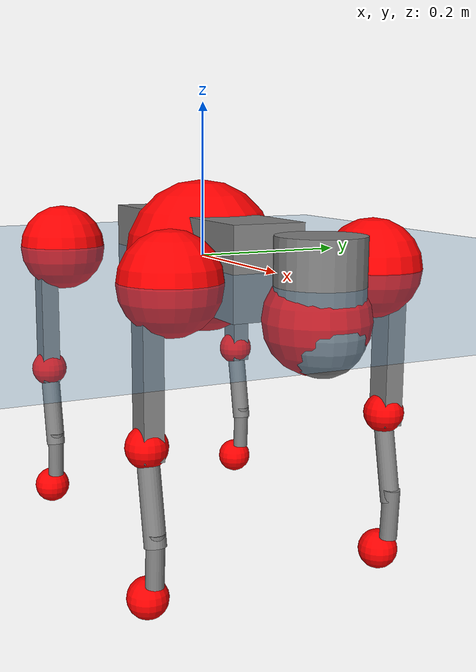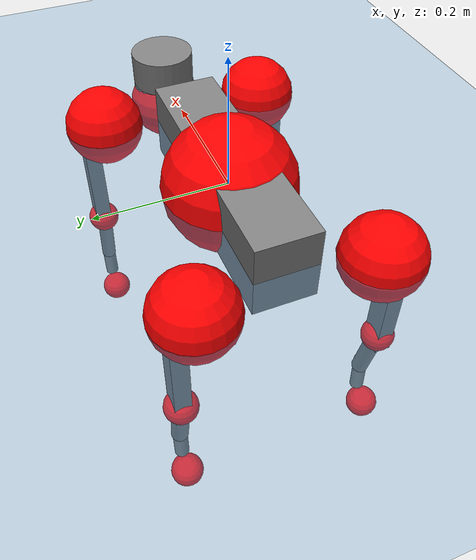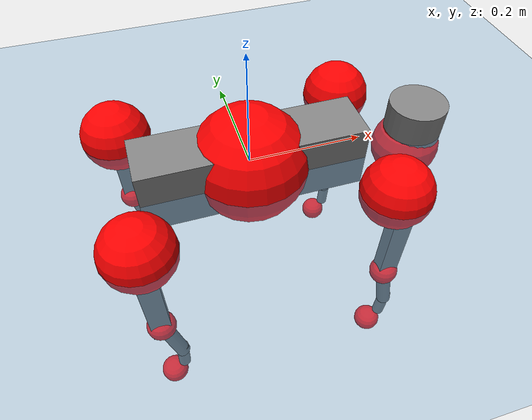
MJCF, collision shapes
<mujoco model="go2">
  <compiler angle="radian" assetdir="assets" balanceinertia="true" inertiafromgeom="false"/>

  <option timestep="0.005" density="1.2" viscosity="2e-05"/>

  <size nkey="1"/>

  <visual>
    <quality shadowsize="8192"/>
    <map shadowclip="0.5"/>
  </visual>

  <default>
    <default class="/">
      <geom contype="0" conaffinity="0" group="1" solref="-1000 -80"/>
      <site size="0.01 0.005 0.005" group="5"/>
      <general forcelimited="true" biastype="affine" gainprm="20" biasprm="0 -20 -0.5"/>
      <default class="go2">
        <joint armature="0.01" damping="0.01" frictionloss="0.2"/>
        <geom condim="1" margin="0.001"/>
        <default class="visual">
          <geom type="mesh" group="2"/>
        </default>
        <default class="collision">
          <geom group="3"/>
          <default class="foot">
            <geom size="0.022 0 0" condim="6" priority="1" friction="0.8 0.02 0.01" solimp="0.015 1 0.022"/>
          </default>
        </default>
        <default class="reward_collision_sphere">
          <geom group="5" rgba="1 0 0 1"/>
        </default>
      </default>
    </default>
  </default>

  <asset>
    <texture type="skybox" colorspace="auto" name="//unnamed_texture_0" builtin="gradient" rgb1="0.95 0.95 0.95" rgb2="0.95 0.95 0.95" width="100" height="600"/>
    <texture type="2d" colorspace="auto" name="texplane" builtin="checker" rgb1="0.345 0.575 0.748" rgb2="0.345 0.575 0.748" markrgb="1 1 1" width="512" height="512"/>
    <material name="MatPlane" class="/" texture="texplane" texuniform="true" texrepeat="2 2" specular="0.9"/>
    <material name="metal" class="/" rgba="0.9 0.95 0.95 1"/>
    <material name="black" class="/" rgba="0 0 0 1"/>
    <material name="white" class="/"/>
    <material name="gray" class="/" rgba="0.671705 0.692426 0.77427 1"/>
    <mesh name="base_0" class="/" file="base_0.obj"/>
    <mesh name="base_1" class="/" file="base_1.obj"/>
    <mesh name="base_2" class="/" file="base_2.obj"/>
    <mesh name="base_3" class="/" file="base_3.obj"/>
    <mesh name="base_4" class="/" file="base_4.obj"/>
    <mesh name="hip_0" class="/" file="hip_0.obj"/>
    <mesh name="hip_1" class="/" file="hip_1.obj"/>
    <mesh name="thigh_0" class="/" file="thigh_0.obj"/>
    <mesh name="thigh_1" class="/" file="thigh_1.obj"/>
    <mesh name="thigh_mirror_0" class="/" file="thigh_mirror_0.obj"/>
    <mesh name="thigh_mirror_1" class="/" file="thigh_mirror_1.obj"/>
    <mesh name="calf_0" class="/" file="calf_0.obj"/>
    <mesh name="calf_1" class="/" file="calf_1.obj"/>
    <mesh name="calf_mirror_0" class="/" file="calf_mirror_0.obj"/>
    <mesh name="calf_mirror_1" class="/" file="calf_mirror_1.obj"/>
    <mesh name="foot" class="/" file="foot.obj"/>
  </asset>

  <worldbody>
    <geom name="floor" class="/" size="100 100 0.125" type="plane" group="0" material="MatPlane"/>
    <light name="toplight_shadow" class="/" pos="0 0 5" dir="0.0990148 0.0990148 -0.990148" type="directional" ambient="0.04 0.04 0.04" diffuse="0.55 0.55 0.55" specular="0.12 0.12 0.12"/>
    <light name="toplight_fill" class="/" pos="0 0 5" dir="0.0990148 0.0990148 -0.990148" type="directional" castshadow="false" ambient="0.04 0.04 0.04" diffuse="0.3 0.3 0.3" specular="0.08 0.08 0.08"/>
    <body name="trunk" childclass="go2" pos="-0.000483718 -0.00256607 -0.00103378" quat="1 -4.87094e-05 -1.50296e-05 5.15355e-05">
      <inertial pos="0.0238256 -0.0025025 -0.00463927" quat="-0.000286205 0.713718 -0.00307858 0.700426" mass="7.08637" diaginertia="0.141105 0.165218 0.011237"/>
      <joint name="//unnamed_joint_0" type="free" armature="0" damping="0" frictionloss="0"/>
      <geom name="//unnamed_geom_1" class="visual" material="black" mesh="base_0"/>
      <geom name="//unnamed_geom_2" class="visual" material="black" mesh="base_1"/>
      <geom name="//unnamed_geom_3" class="visual" material="black" mesh="base_2"/>
      <geom name="//unnamed_geom_4" class="visual" material="white" mesh="base_3"/>
      <geom name="//unnamed_geom_5" class="visual" material="gray" mesh="base_4"/>
      <geom name="trunk_1" class="collision" size="0.190354 0.0473103 0.0576832" type="box"/>
      <geom name="trunk_2" class="collision" size="0.0505993 0.0455393" pos="0.30327 0 0.00856556" type="cylinder"/>
      <geom name="trunk_3" class="collision" size="0.0475633" pos="0.311783 0 -0.0513934"/>
      <geom name="//unnamed_geom_9" class="reward_collision_sphere" size="0.101199"/>
      <geom name="//unnamed_geom_10" class="reward_collision_sphere" size="0.0607191" pos="0.29795 0 -0.038545"/>
      <site name="imu" pos="-0.0139598 0.013922 0.0233974" size="0.0101199"/>
      <camera name="track" pos="0 -2.23059 0" quat="0.707107 0.707107 0 0" mode="trackcom"/>
      <camera name="ego_camera" pos="0.332001 0 0.038545" quat="-0.5 -0.5 0.5 0.5"/>
      <body name="FL_hip" pos="0.208193 0.0522724 0.0013271" quat="0.999999 -6.49418e-05 0.00103981 2.63464e-05">
        <inertial pos="-0.00516732 0.00215909 0.00241397" quat="0.499902 0.498858 0.501744 0.499492" mass="0.681994" diaginertia="0.00120541 0.000992213 0.000219858"/>
        <joint name="FL_hip_joint" pos="0 0 0" axis="0.999957 -0.00898672 0.00228292" stiffness="0.00758622" range="-1.04246 1.10202" armature="0.0104223" damping="0" frictionloss="0.231027"/>
        <geom name="//unnamed_geom_11" class="visual" material="metal" mesh="hip_0"/>
        <geom name="//unnamed_geom_12" class="visual" material="gray" mesh="hip_1"/>
        <geom name="//unnamed_geom_13" class="collision" size="0.0465513 0.0202397" pos="0 0.0892235 0" quat="0.707107 0.707107 0 0" type="cylinder"/>
        <geom name="//unnamed_geom_14" class="reward_collision_sphere" size="0.0607191" pos="0 0.0780705 0"/>
        <body name="FL_thigh" pos="-0.00123221 0.106986 -4.60713e-05" quat="0.999999 -0.000519912 -0.00115238 -0.000890955">
          <inertial pos="-0.00120027 -0.0219915 -0.028346" quat="0.835123 0.0853452 -0.0211661 0.54299" mass="1.19271" diaginertia="0.00793402 0.00994174 0.000394684"/>
          <joint name="FL_thigh_joint" pos="0 0 0" axis="-0.0139711 0.999878 -0.0070149" stiffness="0.00346368" range="-1.51709 3.5193" armature="0.0113133" damping="0.00345621" frictionloss="0.221478"/>
          <geom name="//unnamed_geom_15" class="visual" material="metal" mesh="thigh_0"/>
          <geom name="//unnamed_geom_16" class="visual" material="gray" mesh="thigh_1"/>
          <geom name="//unnamed_geom_17" class="collision" size="0.107776 0.0123968 0.0172037" pos="0 0 -0.0912233" quat="0.707107 0 0.707107 0" type="box"/>
          <body name="FL_calf" pos="-0.00156889 -0.0016551 -0.184458" quat="0.999999 9.31739e-05 0.00082323 -0.001126">
            <inertial pos="0.00954686 -0.000625543 -0.121558" quat="0.71133 2.60953e-05 -0.00592783 0.702833" mass="0.254378" diaginertia="0.00197896 0.00258263 2.43166e-05"/>
            <joint name="FL_calf_joint" pos="0 0 0" axis="0.00186965 0.999952 -0.00962556" stiffness="0.000869642" range="-2.74062 -0.828412" armature="0.0086748" damping="0.00518672" frictionloss="0.204676"/>
            <geom name="//unnamed_geom_18" class="visual" material="gray" mesh="calf_0"/>
            <geom name="//unnamed_geom_19" class="visual" material="black" mesh="calf_1"/>
            <geom name="FL_calf0" class="collision" size="0.0121438 0.0607191" pos="0.00851285 0 -0.0513934" quat="0.994493 0 -0.104807 0" type="cylinder"/>
            <geom name="//unnamed_geom_21" class="collision" size="0.0111318 0.0328895" pos="0.0212821 0 -0.12677" quat="0.999688 0 0.0249974 0" type="cylinder"/>
            <geom name="//unnamed_geom_22" class="visual" pos="0 0 -0.182447" quat="1 0 0 0" material="black" mesh="foot"/>
            <geom name="FL_foot" class="foot" size="0.0161522" pos="-0.00212821 0 -0.182447"/>
            <geom name="//unnamed_geom_24" class="reward_collision_sphere" size="0.0252996"/>
            <geom name="//unnamed_geom_25" class="reward_collision_sphere" size="0.0252996" pos="-0.00212821 0 -0.182447"/>
            <site name="FL_foot" class="foot" pos="-0.00212821 0 -0.182447" size="0.0101199"/>
          </body>
        </body>
      </body>
      <body name="FR_hip" pos="0.206497 -0.0547667 -0.00239387" quat="1 -0.000317016 -0.000209441 -0.000157229">
        <inertial pos="-0.00696336 -0.00244561 0.000737415" quat="0.496264 0.509378 0.498623 0.495612" mass="0.676091" diaginertia="0.00117092 0.00101118 0.000225164"/>
        <joint name="FR_hip_joint" pos="0 0 0" axis="0.999899 0.0080038 -0.011741" range="-1.049 1.0699" armature="0.0107014" damping="0.0117667" frictionloss="0.220191"/>
        <geom name="//unnamed_geom_26" class="visual" pos="0 2.25401e-09 9.66791e-08" quat="4.63268e-05 1 0 0" material="metal" mesh="hip_0"/>
        <geom name="//unnamed_geom_27" class="visual" pos="0 3.65402e-09 -2.39124e-07" quat="4.63268e-05 1 0 0" material="gray" mesh="hip_1"/>
        <geom name="//unnamed_geom_28" class="collision" size="0.0465513 0.0202397" pos="0 -0.0892235 0" quat="0.707107 0.707107 0 0" type="cylinder"/>
        <geom name="//unnamed_geom_29" class="reward_collision_sphere" size="0.0607191" pos="0 -0.0780705 0"/>
        <body name="FR_thigh" pos="0.00128558 -0.106166 0.000913515" quat="0.999999 0.000361085 -0.000550949 0.0011923">
          <inertial pos="-0.00549275 0.0241557 -0.0270802" quat="0.559043 -0.0244631 0.0941349 0.823414" mass="1.27065" diaginertia="0.00824302 0.0103786 0.000406405"/>
          <joint name="FR_thigh_joint" pos="0 0 0" axis="0.00298004 -0.999988 -0.0039891" range="-3.5154 1.56869" armature="0.00963206" damping="0.0182799" frictionloss="0.20106"/>
          <geom name="//unnamed_geom_30" class="visual" material="metal" mesh="thigh_mirror_0"/>
          <geom name="//unnamed_geom_31" class="visual" material="gray" mesh="thigh_mirror_1"/>
          <geom name="//unnamed_geom_32" class="collision" size="0.107776 0.0123968 0.0172037" pos="0 0 -0.0912233" quat="0.707107 0 0.707107 0" type="box"/>
          <body name="FR_calf" pos="-0.00178426 -0.00177484 -0.184617" quat="0.999999 0.000208731 -0.000456862 0.000903536">
            <inertial pos="0.00893727 0.000775143 -0.118646" quat="0.701702 0.0035496 -0.00984733 0.712393" mass="0.247455" diaginertia="0.00204642 0.00253604 2.49937e-05"/>
            <joint name="FR_calf_joint" pos="0 0 0" axis="0.00291027 -0.999991 -0.00323044" range="0.827061 2.70653" armature="0.0108094" damping="0.0161918" frictionloss="0.180659"/>
            <geom name="//unnamed_geom_33" class="visual" material="gray" mesh="calf_mirror_0"/>
            <geom name="//unnamed_geom_34" class="visual" material="black" mesh="calf_mirror_1"/>
            <geom name="FR_calf0" class="collision" size="0.0131558 0.0607191" pos="0.0106411 0 -0.0513934" quat="0.995004 0 -0.0998334 0" type="cylinder"/>
            <geom name="//unnamed_geom_36" class="collision" size="0.0111318 0.0328895" pos="0.0212821 0 -0.12677" quat="0.999688 0 0.0249974 0" type="cylinder"/>
            <geom name="//unnamed_geom_37" class="visual" pos="0 0 -0.182447" quat="1 0 0 0" material="black" mesh="foot"/>
            <geom name="FR_foot" class="foot" size="0.0201006" pos="-0.00212821 0 -0.182447"/>
            <geom name="//unnamed_geom_39" class="reward_collision_sphere" size="0.0252996"/>
            <geom name="//unnamed_geom_40" class="reward_collision_sphere" size="0.0252996" pos="-0.00212821 0 -0.182447"/>
            <site name="FR_foot" class="foot" pos="-0.00212821 0 -0.182447" size="0.0101199"/>
          </body>
        </body>
      </body>
      <body name="RL_hip" pos="-0.206562 0.0526447 0.00196543" quat="1 0.000693866 -0.000561602 0.000191126">
        <inertial pos="0.00619633 -2.48016e-05 0.0027293" quat="0.50145 0.50131 0.499337 0.497894" mass="0.732928" diaginertia="0.00124272 0.0010582 0.000226008"/>
        <joint name="RL_hip_joint" pos="0 0 0" axis="-0.999601 0.0133473 0.0248756" range="-1.03867 0.99767" armature="0.0102167" damping="0.00730846" frictionloss="0.202329"/>
        <geom name="//unnamed_geom_41" class="visual" pos="-1.80809e-09 0 -3.54427e-07" quat="4.63268e-05 0 1 0" material="metal" mesh="hip_0"/>
        <geom name="//unnamed_geom_42" class="visual" pos="-2.93112e-09 0 -3.14326e-07" quat="4.63268e-05 0 1 0" material="gray" mesh="hip_1"/>
        <geom name="//unnamed_geom_43" class="collision" size="0.0465513 0.0202397" pos="0 0.0892235 0" quat="0.707107 0.707107 0 0" type="cylinder"/>
        <geom name="//unnamed_geom_44" class="reward_collision_sphere" size="0.0607191" pos="0 0.0780705 0"/>
        <body name="RL_thigh" pos="-0.00246956 0.106406 -0.000577402" quat="1 2.1205e-05 3.81854e-05 7.85785e-05">
          <inertial pos="-0.0035779 -0.0235065 -0.0295047" quat="0.823474 0.0946493 -0.02302 0.558929" mass="1.22927" diaginertia="0.00822395 0.0106075 0.000420181"/>
          <joint name="RL_thigh_joint" pos="0 0 0" axis="-0.00763999 0.999957 -0.00531869" stiffness="0.00531243" range="-0.57439 4.59446" armature="0.00920598" damping="0" frictionloss="0.212898"/>
          <geom name="//unnamed_geom_45" class="visual" material="metal" mesh="thigh_0"/>
          <geom name="//unnamed_geom_46" class="visual" material="gray" mesh="thigh_1"/>
          <geom name="//unnamed_geom_47" class="collision" size="0.107776 0.0123968 0.0172037" pos="0 0 -0.0912233" quat="0.707107 0 0.707107 0" type="box"/>
          <body name="RL_calf" pos="-0.00190634 -0.000855754 -0.181571" quat="1 -5.31868e-05 -0.000178202 4.0823e-05">
            <inertial pos="0.00766346 9.12733e-06 -0.12035" quat="0.70854 0.00120883 -0.00146009 0.705668" mass="0.26814" diaginertia="0.00215854 0.00264352 2.5287e-05"/>
            <joint name="RL_calf_joint" pos="0 0 0" axis="0.0134679 0.999909 0.00037741" stiffness="0.00286096" range="-2.70528 -0.889132" armature="0.00992466" damping="0" frictionloss="0.200722"/>
            <geom name="//unnamed_geom_48" class="visual" material="gray" mesh="calf_0"/>
            <geom name="//unnamed_geom_49" class="visual" material="black" mesh="calf_1"/>
            <geom name="RL_calf0" class="collision" size="0.0131558 0.0607191" pos="0.0106411 0 -0.0513934" quat="0.995004 0 -0.0998334 0" type="cylinder"/>
            <geom name="//unnamed_geom_51" class="collision" size="0.0111318 0.0328895" pos="0.0212821 0 -0.12677" quat="0.999688 0 0.0249974 0" type="cylinder"/>
            <geom name="//unnamed_geom_52" class="visual" pos="0 0 -0.182447" quat="1 0 0 0" material="black" mesh="foot"/>
            <geom name="RL_foot" class="foot" size="0.0214135" pos="-0.00212821 0 -0.182447"/>
            <geom name="//unnamed_geom_54" class="reward_collision_sphere" size="0.0252996"/>
            <geom name="//unnamed_geom_55" class="reward_collision_sphere" size="0.0252996" pos="-0.00212821 0 -0.182447"/>
            <site name="RL_foot" class="foot" pos="-0.00212821 0 -0.182447" size="0.0101199"/>
          </body>
        </body>
      </body>
      <body name="RR_hip" pos="-0.205556 -0.0509237 -0.00295226" quat="1 -0.000327795 7.31245e-05 0.000905067">
        <inertial pos="0.00623935 0.000175451 -0.00310915" quat="0.500682 0.498639 0.497167 0.50349" mass="0.720484" diaginertia="0.00128941 0.00108988 0.000233509"/>
        <joint name="RR_hip_joint" pos="0 0 0" axis="-0.999979 -0.000240708 0.00648195" stiffness="0.0107038" range="-1.02816 1.0141" armature="0.0101367" damping="0.00382917" frictionloss="0.192384"/>
        <geom name="//unnamed_geom_56" class="visual" pos="1.80986e-09 2.25401e-09 -4.51106e-07" quat="2.14617e-09 4.63268e-05 4.63268e-05 -1" material="metal" mesh="hip_0"/>
        <geom name="//unnamed_geom_57" class="visual" pos="2.92674e-09 3.65402e-09 -7.52014e-08" quat="2.14617e-09 4.63268e-05 4.63268e-05 -1" material="gray" mesh="hip_1"/>
        <geom name="//unnamed_geom_58" class="collision" size="0.0465513 0.0202397" pos="0 -0.0892235 0" quat="0.707107 0.707107 0 0" type="cylinder"/>
        <geom name="//unnamed_geom_59" class="reward_collision_sphere" size="0.0607191" pos="0 -0.0780705 0"/>
        <body name="RR_thigh" pos="4.29334e-05 -0.104059 0.00163796" quat="0.999999 -0.000758488 -0.000302554 -0.00075037">
          <inertial pos="-0.00352992 0.023186 -0.02526" quat="0.552359 -0.020341 0.0856895 0.828941" mass="1.14041" diaginertia="0.0077295 0.00966881 0.000390523"/>
          <joint name="RR_thigh_joint" pos="0 0 0" axis="0.000639222 -1 0.000337588" range="-4.54846 0.581031" armature="0.0105685" damping="0.00690254" frictionloss="0.20012"/>
          <geom name="//unnamed_geom_60" class="visual" material="metal" mesh="thigh_mirror_0"/>
          <geom name="//unnamed_geom_61" class="visual" material="gray" mesh="thigh_mirror_1"/>
          <geom name="//unnamed_geom_62" class="collision" size="0.107776 0.0123968 0.0172037" pos="0 0 -0.0912233" quat="0.707107 0 0.707107 0" type="box"/>
          <body name="RR_calf" pos="0.000655504 0.000667368 -0.180949" quat="0.999999 0.000913747 0.000436591 0.000701785">
            <inertial pos="0.00677339 0.000800555 -0.121836" quat="0.703799 -0.00807407 0.0107739 0.710272" mass="0.254053" diaginertia="0.00208258 0.00249687 2.46147e-05"/>
            <joint name="RR_calf_joint" pos="0 0 0" axis="-1.75041e-05 -1 -0.000429548" range="0.787173 2.75523" armature="0.00919484" damping="0.0124793" frictionloss="0.206519"/>
            <geom name="//unnamed_geom_63" class="visual" material="gray" mesh="calf_mirror_0"/>
            <geom name="//unnamed_geom_64" class="visual" material="black" mesh="calf_mirror_1"/>
            <geom name="RR_calf0" class="collision" size="0.0131558 0.0607191" pos="0.0106411 0 -0.0513934" quat="0.995004 0 -0.0998334 0" type="cylinder"/>
            <geom name="//unnamed_geom_66" class="collision" size="0.0111318 0.0328895" pos="0.0212821 0 -0.12677" quat="0.999688 0 0.0249974 0" type="cylinder"/>
            <geom name="//unnamed_geom_67" class="visual" pos="0 0 -0.182447" quat="1 0 0 0" material="black" mesh="foot"/>
            <geom name="RR_foot" class="foot" size="0.0200488" pos="-0.00212821 0 -0.182447"/>
            <geom name="//unnamed_geom_69" class="reward_collision_sphere" size="0.0252996"/>
            <geom name="//unnamed_geom_70" class="reward_collision_sphere" size="0.0252996" pos="-0.00212821 0 -0.182447"/>
            <site name="RR_foot" class="foot" pos="-0.00212821 0 -0.182447" size="0.0101199"/>
          </body>
        </body>
      </body>
    </body>
  </worldbody>

  <contact>
    <pair class="/" geom1="floor" geom2="FL_foot" name="//unnamed_contact_0"/>
    <pair class="/" geom1="floor" geom2="FR_foot" name="//unnamed_contact_1"/>
    <pair class="/" geom1="floor" geom2="RL_foot" name="//unnamed_contact_2"/>
    <pair class="/" geom1="floor" geom2="RR_foot" name="//unnamed_contact_3"/>
  </contact>

  <actuator>
    <general name="FL_hip" class="/" joint="FL_hip_joint" forcerange="-24.389 24.389" gainprm="21.02" biasprm="0 -21.02 -0.528365"/>
    <general name="FL_thigh" class="/" joint="FL_thigh_joint" forcerange="-21.4564 21.4564" gainprm="21.02" biasprm="0 -21.02 -0.528365"/>
    <general name="FL_calf" class="/" joint="FL_calf_joint" forcerange="-43.6317 43.6317" gainprm="21.02" biasprm="0 -21.02 -0.528365"/>
    <general name="FR_hip" class="/" joint="FR_hip_joint" forcerange="-25.1966 25.1966" gainprm="21.02" biasprm="0 -21.02 -0.528365"/>
    <general name="FR_thigh" class="/" joint="FR_thigh_joint" forcerange="-25.1738 25.1738" gainprm="21.02" biasprm="0 -21.02 -0.528365"/>
    <general name="FR_calf" class="/" joint="FR_calf_joint" forcerange="-50.4951 50.4951" gainprm="21.02" biasprm="0 -21.02 -0.528365"/>
    <general name="RL_hip" class="/" joint="RL_hip_joint" forcerange="-23.4905 23.4905" gainprm="21.02" biasprm="0 -21.02 -0.528365"/>
    <general name="RL_thigh" class="/" joint="RL_thigh_joint" forcerange="-23.4336 23.4336" gainprm="21.02" biasprm="0 -21.02 -0.528365"/>
    <general name="RL_calf" class="/" joint="RL_calf_joint" forcerange="-41.066 41.066" gainprm="21.02" biasprm="0 -21.02 -0.528365"/>
    <general name="RR_hip" class="/" joint="RR_hip_joint" forcerange="-23.1592 23.1592" gainprm="21.02" biasprm="0 -21.02 -0.528365"/>
    <general name="RR_thigh" class="/" joint="RR_thigh_joint" forcerange="-24.6612 24.6612" gainprm="21.02" biasprm="0 -21.02 -0.528365"/>
    <general name="RR_calf" class="/" joint="RR_calf_joint" forcerange="-47.1927 47.1927" gainprm="21.02" biasprm="0 -21.02 -0.528365"/>
  </actuator>

  <sensor>
    <gyro site="imu" name="imu_angular_velocity"/>
    <velocimeter site="imu" name="imu_linear_velocity"/>
    <framelinvel objtype="site" objname="FL_foot" name="FL_foot_global_linear_velocity"/>
    <framelinvel objtype="site" objname="FR_foot" name="FR_foot_global_linear_velocity"/>
    <framelinvel objtype="site" objname="RL_foot" name="RL_foot_global_linear_velocity"/>
    <framelinvel objtype="site" objname="RR_foot" name="RR_foot_global_linear_velocity"/>
  </sensor>

  <keyframe>
    <key name="home" qpos="0 0 0.325 1 0 0 0 0.1 0.8 -1.5 -0.1 -0.8 1.5 -0.1 0.8 -1.5 0.1 -0.8 1.5"/>
  </keyframe>
</mujoco>
